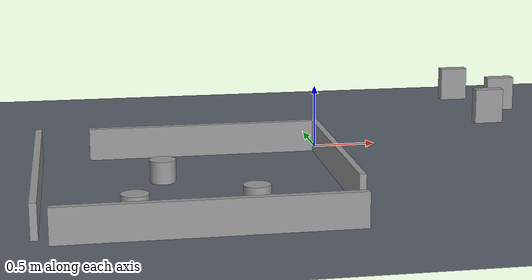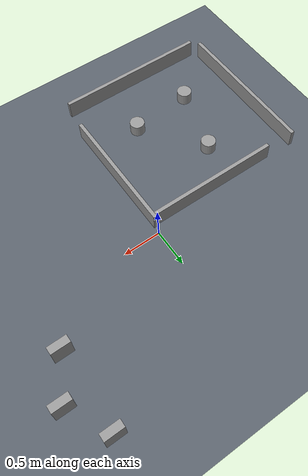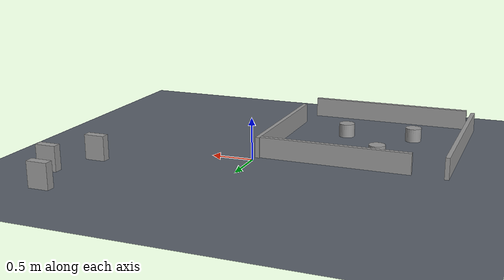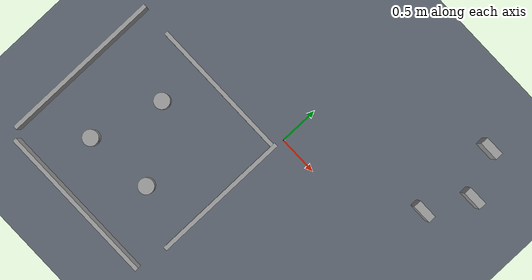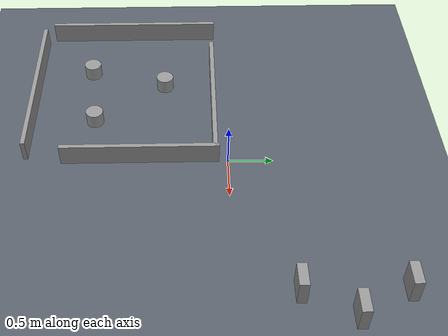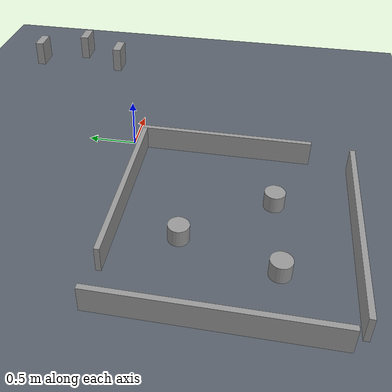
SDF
<sdf version="1.7">
 <world name="autorace_v014">
  <physics type="ode">
   <real_time_update_rate>1000.0</real_time_update_rate>
   <max_step_size>0.001</max_step_size>
   <real_time_factor>1</real_time_factor>
   <ode>
    <solver>
     <type>quick</type>
     <iters>150</iters>
     <precon_iters>0</precon_iters>
     <sor>1.4</sor>
     <use_dynamic_moi_rescaling>1</use_dynamic_moi_rescaling>
    </solver>
    <constraints>
     <cfm>0.00001</cfm>
     <erp>0.2</erp>
     <contact_max_correcting_vel>2000.0</contact_max_correcting_vel>
     <contact_surface_layer>0.01</contact_surface_layer>
    </constraints>
   </ode>
  </physics>
  <scene>
   <ambient>0.45 0.45 0.45 1</ambient>
   <background>0.18 0.20 0.23 1</background>
   <shadows>false</shadows>
  </scene>
  <light name="sun" type="directional">
   <cast_shadows>false</cast_shadows>
   <pose>0 0 10 0 0 0</pose>
   <diffuse>0.55 0.55 0.55 1</diffuse>
   <specular>0.05 0.05 0.05 1</specular>
   <direction>-0.3 0.2 -1.0</direction>
  </light>
  <light name="soft_fill" type="directional">
   <pose>0 0 8 0 0 0</pose>
   <diffuse>0.12 0.12 0.12 1</diffuse>
   <specular>0 0 0 1</specular>
   <direction>0.4 -0.3 -1</direction>
   <cast_shadows>false</cast_shadows>
  </light>
  <model name="ground_plane">
   <static>true</static>
   <pose>0 0 -0.04 0 0 0</pose>
   <link name="link">
    <collision name="collision">
     <geometry><plane><normal>0 0 1</normal><size>20 20</size></plane></geometry>
    </collision>
    <visual name="visual">
     <cast_shadows>false</cast_shadows>
     <geometry><plane><normal>0 0 1</normal><size>20 20</size></plane></geometry>
     <material>
      <ambient>0.18 0.20 0.23 1</ambient>
      <diffuse>0.35 0.38 0.42 1</diffuse>
      <specular>0 0 0 1</specular>
      <emissive>0 0 0 1</emissive>
     </material>
    </visual>
   </link>
  </model>
  <model name="tunnel_wall">
   <link name="Wall_1">
    <pose>-1.12336 0.0571347 0 0 -0 1.5708</pose>
    <visual name="Wall_1_Visual">
     <pose>0 0 0.125 0 -0 0</pose>
     <geometry><box><size>2.06167 0.05 0.25</size></box></geometry>
     <material>
      <script><uri>file://media/materials/scripts/gazebo.material</uri><name>Gazebo/Grey</name></script>
      <ambient>1 1 1 1</ambient>
      <diffuse>0.7 0.7 0.7 1</diffuse>
      <specular>0.01 0.01 0.01 1</specular>
      <emissive>0 0 0 1</emissive>
     </material>
    </visual>
    <collision name="Wall_1_Collision">
     <pose>0 0 0.125 0 -0 0</pose>
     <geometry><box><size>2.06167 0.05 0.25</size></box></geometry>
     <surface>
      <friction>
       <ode><mu>1</mu><mu2>1</mu2><fdir1>0 0 0</fdir1><slip1>0</slip1><slip2>0</slip2></ode>
       <torsional>
        <coefficient>1</coefficient>
        <patch_radius>0</patch_radius>
        <surface_radius>0</surface_radius>
        <use_patch_radius>1</use_patch_radius>
        <ode><slip>0</slip></ode>
       </torsional>
      </friction>
      <bounce><restitution_coefficient>0</restitution_coefficient><threshold>1e+06</threshold></bounce>
      <contact>
       <collide_without_contact>0</collide_without_contact>
       <collide_without_contact_bitmask>1</collide_without_contact_bitmask>
       <collide_bitmask>1</collide_bitmask>
       <ode>
        <soft_cfm>0</soft_cfm>
        <soft_erp>0.2</soft_erp>
        <kp>1e+13</kp>
        <kd>1</kd>
        <max_vel>0.01</max_vel>
        <min_depth>0</min_depth>
       </ode>
       <bullet>
        <split_impulse>1</split_impulse>
        <split_impulse_penetration_threshold>-0.01</split_impulse_penetration_threshold>
        <soft_cfm>0</soft_cfm>
        <soft_erp>0.2</soft_erp>
        <kp>1e+13</kp>
        <kd>1</kd>
       </bullet>
      </contact>
     </surface>
    </collision>
   </link>
   <link name="Wall_2">
    <pose>0 -1.07143 0 0 -0 0</pose>
    <visual name="Wall_2_Visual">
     <pose>0 0 0.125 0 -0 0</pose>
     <geometry><box><size>2.06167 0.05 0.25</size></box></geometry>
     <material>
      <script><uri>file://media/materials/scripts/gazebo.material</uri><name>Gazebo/Grey</name></script>
      <ambient>1 1 1 1</ambient>
      <diffuse>0.7 0.7 0.7 1</diffuse>
      <specular>0.01 0.01 0.01 1</specular>
      <emissive>0 0 0 1</emissive>
     </material>
    </visual>
    <collision name="Wall_2_Collision">
     <pose>0 0 0.125 0 -0 0</pose>
     <geometry><box><size>2.06167 0.05 0.25</size></box></geometry>
     <surface>
      <friction>
       <ode><mu>1</mu><mu2>1</mu2><fdir1>0 0 0</fdir1><slip1>0</slip1><slip2>0</slip2></ode>
       <torsional>
        <coefficient>1</coefficient>
        <patch_radius>0</patch_radius>
        <surface_radius>0</surface_radius>
        <use_patch_radius>1</use_patch_radius>
        <ode><slip>0</slip></ode>
       </torsional>
      </friction>
      <bounce><restitution_coefficient>0</restitution_coefficient><threshold>1e+06</threshold></bounce>
      <contact>
       <collide_without_contact>0</collide_without_contact>
       <collide_without_contact_bitmask>1</collide_without_contact_bitmask>
       <collide_bitmask>1</collide_bitmask>
       <ode>
        <soft_cfm>0</soft_cfm>
        <soft_erp>0.2</soft_erp>
        <kp>1e+13</kp>
        <kd>1</kd>
        <max_vel>0.01</max_vel>
        <min_depth>0</min_depth>
       </ode>
       <bullet>
        <split_impulse>1</split_impulse>
        <split_impulse_penetration_threshold>-0.01</split_impulse_penetration_threshold>
        <soft_cfm>0</soft_cfm>
        <soft_erp>0.2</soft_erp>
        <kp>1e+13</kp>
        <kd>1</kd>
       </bullet>
      </contact>
     </surface>
    </collision>
   </link>
   <link name="Wall_3">
    <pose>1.08054 0.21037 0 0 -0 1.5708</pose>
    <inertial>
     <inertia><ixx>nan</ixx><ixy>0</ixy><ixz>0</ixz><iyy>nan</iyy><iyz>0</iyz><izz>nan</izz></inertia>
     <mass>0</mass>
    </inertial>
    <visual name="Wall_3_Visual">
     <pose>0 0 0.125 0 -0 0</pose>
     <geometry><box><size>1.76043 0.05 0.25</size></box></geometry>
     <material>
      <script><uri>file://media/materials/scripts/gazebo.material</uri><name>Gazebo/Grey</name></script>
      <ambient>1 1 1 1</ambient>
      <diffuse>0.7 0.7 0.7 1</diffuse>
      <specular>0.01 0.01 0.01 1</specular>
      <emissive>0 0 0 1</emissive>
     </material>
    </visual>
    <collision name="Wall_3_Collision">
     <pose>0 0 0.125 0 -0 0</pose>
     <geometry><box><size>1.76043 0.05 0.25</size></box></geometry>
     <surface>
      <friction>
       <ode><mu>1</mu><mu2>1</mu2><fdir1>0 0 0</fdir1><slip1>0</slip1><slip2>0</slip2></ode>
       <torsional>
        <coefficient>1</coefficient>
        <patch_radius>0</patch_radius>
        <surface_radius>0</surface_radius>
        <use_patch_radius>1</use_patch_radius>
        <ode><slip>0</slip></ode>
       </torsional>
      </friction>
      <bounce><restitution_coefficient>0</restitution_coefficient><threshold>1e+06</threshold></bounce>
      <contact>
       <collide_without_contact>0</collide_without_contact>
       <collide_without_contact_bitmask>1</collide_without_contact_bitmask>
       <collide_bitmask>1</collide_bitmask>
       <ode>
        <soft_cfm>0</soft_cfm>
        <soft_erp>0.2</soft_erp>
        <kp>1e+13</kp>
        <kd>1</kd>
        <max_vel>0.01</max_vel>
        <min_depth>0</min_depth>
       </ode>
       <bullet>
        <split_impulse>1</split_impulse>
        <split_impulse_penetration_threshold>-0.01</split_impulse_penetration_threshold>
        <soft_cfm>0</soft_cfm>
        <soft_erp>0.2</soft_erp>
        <kp>1e+13</kp>
        <kd>1</kd>
       </bullet>
      </contact>
     </surface>
    </collision>
   </link>
   <link name="Wall_4">
    <pose>0.171806 1.04802 0 0 -0 3.14159</pose>
    <visual name="Wall_4_Visual">
     <pose>0 0 0.125 0 -0 0</pose>
     <geometry><box><size>1.80969 0.05 0.25</size></box></geometry>
     <material>
      <script><uri>file://media/materials/scripts/gazebo.material</uri><name>Gazebo/Grey</name></script>
      <ambient>1 1 1 1</ambient>
      <diffuse>0.7 0.7 0.7 1</diffuse>
      <specular>0.01 0.01 0.01 1</specular>
      <emissive>0 0 0 1</emissive>
     </material>
    </visual>
    <collision name="Wall_4_Collision">
     <pose>0 0 0.125 0 -0 0</pose>
     <geometry><box><size>1.80969 0.05 0.25</size></box></geometry>
     <surface>
      <friction>
       <ode><mu>1</mu><mu2>1</mu2><fdir1>0 0 0</fdir1><slip1>0</slip1><slip2>0</slip2></ode>
       <torsional>
        <coefficient>1</coefficient>
        <patch_radius>0</patch_radius>
        <surface_radius>0</surface_radius>
        <use_patch_radius>1</use_patch_radius>
        <ode><slip>0</slip></ode>
       </torsional>
      </friction>
      <bounce><restitution_coefficient>0</restitution_coefficient><threshold>1e+06</threshold></bounce>
      <contact>
       <collide_without_contact>0</collide_without_contact>
       <collide_without_contact_bitmask>1</collide_without_contact_bitmask>
       <collide_bitmask>1</collide_bitmask>
       <ode>
        <soft_cfm>0</soft_cfm>
        <soft_erp>0.2</soft_erp>
        <kp>1e+13</kp>
        <kd>1</kd>
        <max_vel>0.01</max_vel>
        <min_depth>0</min_depth>
       </ode>
       <bullet>
        <split_impulse>1</split_impulse>
        <split_impulse_penetration_threshold>-0.01</split_impulse_penetration_threshold>
        <soft_cfm>0</soft_cfm>
        <soft_erp>0.2</soft_erp>
        <kp>1e+13</kp>
        <kd>1</kd>
       </bullet>
      </contact>
     </surface>
    </collision>
   </link>
   <static>1</static>
   <pose>-1.1049415859030838 -1.1863101321585905 0.0005 0.0 -0.0 0.0</pose>
  </model>
  <model name="tunnel_obstacle">
   <link name="obstacle_1">
    <pose>0.484745 -0.242858 0 0 -0 0</pose>
    <inertial>
     <mass>0.0416663</mass>
     <inertia>
      <ixx>0.00098188</ixx>
      <ixy>0</ixy>
      <ixz>0</ixz>
      <iyy>0.00098188</iyy>
      <iyz>0</iyz>
      <izz>0.00046751</izz>
     </inertia>
    </inertial>
    <visual name="visual">
     <geometry><cylinder><radius>0.1</radius><length>0.25</length></cylinder></geometry>
     <material>
      <lighting>1</lighting>
      <script><uri>file://media/materials/scripts/gazebo.material</uri><name>Gazebo/Grey</name></script>
      <ambient>0.3 0.3 0.3 1</ambient>
      <diffuse>0.7 0.7 0.7 1</diffuse>
      <specular>0.01 0.01 0.01 1</specular>
      <emissive>0 0 0 1</emissive>
      <shader type="pixel"><normal_map>__default__</normal_map></shader>
     </material>
    </visual>
    <collision name="collision">
     <geometry><cylinder><radius>0.1</radius><length>0.46418</length></cylinder></geometry>
     <surface>
      <friction>
       <ode><mu>1</mu><mu2>1</mu2><fdir1>0 0 0</fdir1><slip1>0</slip1><slip2>0</slip2></ode>
       <torsional>
        <coefficient>1</coefficient>
        <patch_radius>0</patch_radius>
        <surface_radius>0</surface_radius>
        <use_patch_radius>1</use_patch_radius>
        <ode><slip>0</slip></ode>
       </torsional>
      </friction>
      <bounce><restitution_coefficient>0</restitution_coefficient><threshold>1e+06</threshold></bounce>
      <contact>
       <collide_without_contact>0</collide_without_contact>
       <collide_without_contact_bitmask>1</collide_without_contact_bitmask>
       <collide_bitmask>1</collide_bitmask>
       <ode>
        <soft_cfm>0</soft_cfm>
        <soft_erp>0.2</soft_erp>
        <kp>1e+13</kp>
        <kd>1</kd>
        <max_vel>0.01</max_vel>
        <min_depth>0</min_depth>
       </ode>
       <bullet>
        <split_impulse>1</split_impulse>
        <split_impulse_penetration_threshold>-0.01</split_impulse_penetration_threshold>
        <soft_cfm>0</soft_cfm>
        <soft_erp>0.2</soft_erp>
        <kp>1e+13</kp>
        <kd>1</kd>
       </bullet>
      </contact>
     </surface>
    </collision>
   </link>
   <link name="obstacle_2">
    <pose>-0.370791 -0.329367 0 0 -0 0</pose>
    <inertial>
     <mass>0.0416663</mass>
     <inertia>
      <ixx>0.00098188</ixx>
      <ixy>0</ixy>
      <ixz>0</ixz>
      <iyy>0.00098188</iyy>
      <iyz>0</iyz>
      <izz>0.00046751</izz>
     </inertia>
    </inertial>
    <visual name="visual">
     <geometry><cylinder><radius>0.1</radius><length>0.25</length></cylinder></geometry>
     <material>
      <lighting>1</lighting>
      <script><uri>file://media/materials/scripts/gazebo.material</uri><name>Gazebo/Grey</name></script>
      <ambient>0.3 0.3 0.3 1</ambient>
      <diffuse>0.7 0.7 0.7 1</diffuse>
      <specular>0.01 0.01 0.01 1</specular>
      <emissive>0 0 0 1</emissive>
      <shader type="pixel"><normal_map>__default__</normal_map></shader>
     </material>
    </visual>
    <collision name="collision">
     <geometry><cylinder><radius>0.1</radius><length>0.46418</length></cylinder></geometry>
     <surface>
      <friction>
       <ode><mu>1</mu><mu2>1</mu2><fdir1>0 0 0</fdir1><slip1>0</slip1><slip2>0</slip2></ode>
       <torsional>
        <coefficient>1</coefficient>
        <patch_radius>0</patch_radius>
        <surface_radius>0</surface_radius>
        <use_patch_radius>1</use_patch_radius>
        <ode><slip>0</slip></ode>
       </torsional>
      </friction>
      <bounce><restitution_coefficient>0</restitution_coefficient><threshold>1e+06</threshold></bounce>
      <contact>
       <collide_without_contact>0</collide_without_contact>
       <collide_without_contact_bitmask>1</collide_without_contact_bitmask>
       <collide_bitmask>1</collide_bitmask>
       <ode>
        <soft_cfm>0</soft_cfm>
        <soft_erp>0.2</soft_erp>
        <kp>1e+13</kp>
        <kd>1</kd>
        <max_vel>0.01</max_vel>
        <min_depth>0</min_depth>
       </ode>
       <bullet>
        <split_impulse>1</split_impulse>
        <split_impulse_penetration_threshold>-0.01</split_impulse_penetration_threshold>
        <soft_cfm>0</soft_cfm>
        <soft_erp>0.2</soft_erp>
        <kp>1e+13</kp>
        <kd>1</kd>
       </bullet>
      </contact>
     </surface>
    </collision>
   </link>
   <link name="obstacle_3">
    <pose>-0.113956 0.572222 0 0 -0 0</pose>
    <inertial>
     <mass>0.0416663</mass>
     <inertia>
      <ixx>0.00098188</ixx>
      <ixy>0</ixy>
      <ixz>0</ixz>
      <iyy>0.00098188</iyy>
      <iyz>0</iyz>
      <izz>0.00046751</izz>
     </inertia>
    </inertial>
    <visual name="visual">
     <geometry><cylinder><radius>0.1</radius><length>0.25</length></cylinder></geometry>
     <material>
      <lighting>1</lighting>
      <script><uri>file://media/materials/scripts/gazebo.material</uri><name>Gazebo/Grey</name></script>
      <ambient>0.3 0.3 0.3 1</ambient>
      <diffuse>0.7 0.7 0.7 1</diffuse>
      <specular>0.01 0.01 0.01 1</specular>
      <emissive>0 0 0 1</emissive>
      <shader type="pixel"><normal_map>__default__</normal_map></shader>
     </material>
    </visual>
    <collision name="collision">
     <geometry><cylinder><radius>0.1</radius><length>0.46418</length></cylinder></geometry>
     <surface>
      <friction>
       <ode><mu>1</mu><mu2>1</mu2><fdir1>0 0 0</fdir1><slip1>0</slip1><slip2>0</slip2></ode>
       <torsional>
        <coefficient>1</coefficient>
        <patch_radius>0</patch_radius>
        <surface_radius>0</surface_radius>
        <use_patch_radius>1</use_patch_radius>
        <ode><slip>0</slip></ode>
       </torsional>
      </friction>
      <bounce><restitution_coefficient>0</restitution_coefficient><threshold>1e+06</threshold></bounce>
      <contact>
       <collide_without_contact>0</collide_without_contact>
       <collide_without_contact_bitmask>1</collide_without_contact_bitmask>
       <collide_bitmask>1</collide_bitmask>
       <ode>
        <soft_cfm>0</soft_cfm>
        <soft_erp>0.2</soft_erp>
        <kp>1e+13</kp>
        <kd>1</kd>
        <max_vel>0.01</max_vel>
        <min_depth>0</min_depth>
       </ode>
       <bullet>
        <split_impulse>1</split_impulse>
        <split_impulse_penetration_threshold>-0.01</split_impulse_penetration_threshold>
        <soft_cfm>0</soft_cfm>
        <soft_erp>0.2</soft_erp>
        <kp>1e+13</kp>
        <kd>1</kd>
       </bullet>
      </contact>
     </surface>
    </collision>
   </link>
   <static>1</static>
   <pose>-1.1928502202643172 -1.2905048458149782 0.0005 0.0 -0.0 0.0</pose>
  </model>
  <model name="barrier_1">
   <link name="link">
    <inertial>
     <mass>1</mass>
     <inertia>
      <ixx>0.166667</ixx>
      <ixy>0</ixy>
      <ixz>0</ixz>
      <iyy>0.166667</iyy>
      <iyz>0</iyz>
      <izz>0.166667</izz>
     </inertia>
    </inertial>
    <visual name="visual">
     <geometry><box><size>0.25 0.1 0.3</size></box></geometry>
     <material>
      <script><name>Gazebo/Grey</name><uri>file://media/materials/scripts/gazebo.material</uri></script>
      <shader type="pixel"><normal_map>__default__</normal_map></shader>
      <ambient>0.3 0.3 0.3 1</ambient>
      <diffuse>0.7 0.7 0.7 1</diffuse>
      <specular>0.01 0.01 0.01 1</specular>
      <emissive>0 0 0 1</emissive>
     </material>
    </visual>
    <collision name="collision">
     <geometry><box><size>0.25 0.1 0.3</size></box></geometry>
     <surface>
      <friction>
       <ode><mu>1</mu><mu2>1</mu2><fdir1>0 0 0</fdir1><slip1>0</slip1><slip2>0</slip2></ode>
       <torsional>
        <coefficient>1</coefficient>
        <patch_radius>0</patch_radius>
        <surface_radius>0</surface_radius>
        <use_patch_radius>1</use_patch_radius>
        <ode><slip>0</slip></ode>
       </torsional>
      </friction>
      <bounce><restitution_coefficient>0</restitution_coefficient><threshold>1e+06</threshold></bounce>
      <contact>
       <collide_without_contact>0</collide_without_contact>
       <collide_without_contact_bitmask>1</collide_without_contact_bitmask>
       <collide_bitmask>1</collide_bitmask>
       <ode>
        <soft_cfm>0</soft_cfm>
        <soft_erp>0.2</soft_erp>
        <kp>1e+13</kp>
        <kd>1</kd>
        <max_vel>0.01</max_vel>
        <min_depth>0</min_depth>
       </ode>
       <bullet>
        <split_impulse>1</split_impulse>
        <split_impulse_penetration_threshold>-0.01</split_impulse_penetration_threshold>
        <soft_cfm>0</soft_cfm>
        <soft_erp>0.2</soft_erp>
        <kp>1e+13</kp>
        <kd>1</kd>
       </bullet>
      </contact>
     </surface>
    </collision>
   </link>
   <static>0</static>
   <pose>1.7066079295154186 0.6185022026431719 0.1505 0.0 -0.0 0.0</pose>
  </model>
  <model name="barrier_2">
   <link name="link">
    <inertial>
     <mass>1</mass>
     <inertia>
      <ixx>0.166667</ixx>
      <ixy>0</ixy>
      <ixz>0</ixz>
      <iyy>0.166667</iyy>
      <iyz>0</iyz>
      <izz>0.166667</izz>
     </inertia>
    </inertial>
    <visual name="visual">
     <geometry><box><size>0.25 0.1 0.3</size></box></geometry>
     <material>
      <script><name>Gazebo/Grey</name><uri>file://media/materials/scripts/gazebo.material</uri></script>
      <shader type="pixel"><normal_map>__default__</normal_map></shader>
      <ambient>0.3 0.3 0.3 1</ambient>
      <diffuse>0.7 0.7 0.7 1</diffuse>
      <specular>0.01 0.01 0.01 1</specular>
      <emissive>0 0 0 1</emissive>
     </material>
    </visual>
    <collision name="collision">
     <geometry><box><size>0.25 0.1 0.3</size></box></geometry>
     <surface>
      <friction>
       <ode><mu>1</mu><mu2>1</mu2><fdir1>0 0 0</fdir1><slip1>0</slip1><slip2>0</slip2></ode>
       <torsional>
        <coefficient>1</coefficient>
        <patch_radius>0</patch_radius>
        <surface_radius>0</surface_radius>
        <use_patch_radius>1</use_patch_radius>
        <ode><slip>0</slip></ode>
       </torsional>
      </friction>
      <bounce><restitution_coefficient>0</restitution_coefficient><threshold>1e+06</threshold></bounce>
      <contact>
       <collide_without_contact>0</collide_without_contact>
       <collide_without_contact_bitmask>1</collide_without_contact_bitmask>
       <collide_bitmask>1</collide_bitmask>
       <ode>
        <soft_cfm>0</soft_cfm>
        <soft_erp>0.2</soft_erp>
        <kp>1e+13</kp>
        <kd>1</kd>
        <max_vel>0.01</max_vel>
        <min_depth>0</min_depth>
       </ode>
       <bullet>
        <split_impulse>1</split_impulse>
        <split_impulse_penetration_threshold>-0.01</split_impulse_penetration_threshold>
        <soft_cfm>0</soft_cfm>
        <soft_erp>0.2</soft_erp>
        <kp>1e+13</kp>
        <kd>1</kd>
       </bullet>
      </contact>
     </surface>
    </collision>
   </link>
   <static>0</static>
   <pose>1.9929515418502204 1.145374449339207 0.1505 0.0 -0.0 0.0</pose>
  </model>
  <model name="barrier_3">
   <link name="link">
    <inertial>
     <mass>1</mass>
     <inertia>
      <ixx>0.166667</ixx>
      <ixy>0</ixy>
      <ixz>0</ixz>
      <iyy>0.166667</iyy>
      <iyz>0</iyz>
      <izz>0.166667</izz>
     </inertia>
    </inertial>
    <visual name="visual">
     <geometry><box><size>0.25 0.1 0.3</size></box></geometry>
     <material>
      <script><name>Gazebo/Grey</name><uri>file://media/materials/scripts/gazebo.material</uri></script>
      <shader type="pixel"><normal_map>__default__</normal_map></shader>
      <ambient>0.3 0.3 0.3 1</ambient>
      <diffuse>0.7 0.7 0.7 1</diffuse>
      <specular>0.01 0.01 0.01 1</specular>
      <emissive>0 0 0 1</emissive>
     </material>
    </visual>
    <collision name="collision">
     <geometry><box><size>0.25 0.1 0.3</size></box></geometry>
     <surface>
      <friction>
       <ode><mu>1</mu><mu2>1</mu2><fdir1>0 0 0</fdir1><slip1>0</slip1><slip2>0</slip2></ode>
       <torsional>
        <coefficient>1</coefficient>
        <patch_radius>0</patch_radius>
        <surface_radius>0</surface_radius>
        <use_patch_radius>1</use_patch_radius>
        <ode><slip>0</slip></ode>
       </torsional>
      </friction>
      <bounce><restitution_coefficient>0</restitution_coefficient><threshold>1e+06</threshold></bounce>
      <contact>
       <collide_without_contact>0</collide_without_contact>
       <collide_without_contact_bitmask>1</collide_without_contact_bitmask>
       <collide_bitmask>1</collide_bitmask>
       <ode>
        <soft_cfm>0</soft_cfm>
        <soft_erp>0.2</soft_erp>
        <kp>1e+13</kp>
        <kd>1</kd>
        <max_vel>0.01</max_vel>
        <min_depth>0</min_depth>
       </ode>
       <bullet>
        <split_impulse>1</split_impulse>
        <split_impulse_penetration_threshold>-0.01</split_impulse_penetration_threshold>
        <soft_cfm>0</soft_cfm>
        <soft_erp>0.2</soft_erp>
        <kp>1e+13</kp>
        <kd>1</kd>
       </bullet>
      </contact>
     </surface>
    </collision>
   </link>
   <static>0</static>
   <pose>1.7066079295154186 1.676828193832599 0.1505 0.0 -0.0 0.0</pose>
  </model>
  <plugin name="race_regions" filename="libautorace_regions_plugin.so">
   <ros><namespace>/autorace/truth</namespace></ros>
   <update_rate>200</update_rate>
   <robot_model>turtlebot3</robot_model>
   <region name="s1">
    <pose>-1.214097 1.442934 0.110000 0 0 -1.570000</pose>
    <size>0.3436 0.0023 0.1600</size>
   </region>
   <region name="s2">
    <pose>-0.985022 1.443117 0.110000 0 0 -1.570000</pose>
    <size>0.3436 0.0023 0.1600</size>
   </region>
   <region name="start_line">
    <pose>1.031410 -1.998678 0.180000 0 0 0.000000</pose>
    <size>0.0344 0.3093 0.3000</size>
   </region>
   <region name="branch_right">
    <pose>1.145374 -0.292070 0.180000 0 0 0.000000</pose>
    <size>0.2291 0.2520 0.3000</size>
   </region>
   <region name="branch_left">
    <pose>1.145374 -1.431718 0.180000 0 0 0.000000</pose>
    <size>0.2291 0.2520 0.3000</size>
   </region>
  </plugin>
 </world>
</sdf>
